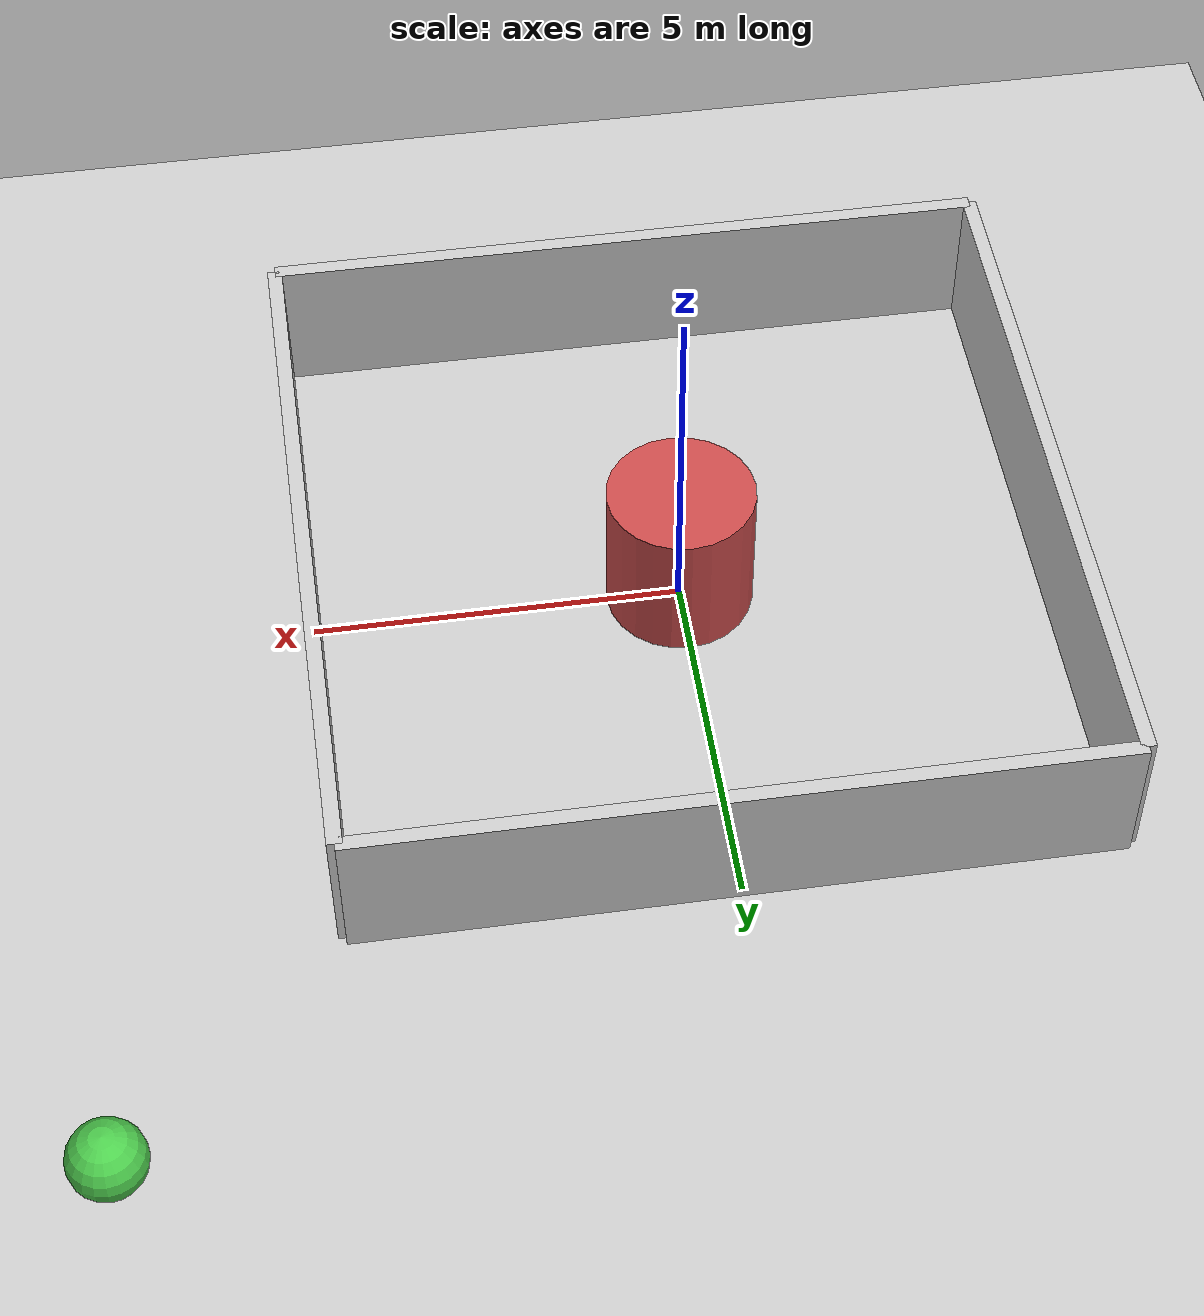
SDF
<?xml version="1.0" ?>
<sdf version="1.6">
  <world name="swarm_world">
    <!-- A global light source -->
    <include>
      <uri>model://sun</uri>
    </include>

    <!-- A ground plane -->
    <include>
      <uri>model://ground_plane</uri>
    </include>

    <!-- Environment with obstacles -->
    <!-- Obstacle 1: Wall -->
    <model name="wall1">
      <static>true</static>
      <link name="link">
        <collision name="collision">
          <geometry>
            <box>
              <size>10.0 0.2 2.0</size>
            </box>
          </geometry>
        </collision>
        <visual name="visual">
          <geometry>
            <box>
              <size>10.0 0.2 2.0</size>
            </box>
          </geometry>
          <material>
            <ambient>0.8 0.8 0.8 1</ambient>
            <diffuse>0.8 0.8 0.8 1</diffuse>
          </material>
        </visual>
      </link>
      <pose>0 5 1 0 0 0</pose>
    </model>

    <!-- Obstacle 2: Wall -->
    <model name="wall2">
      <static>true</static>
      <link name="link">
        <collision name="collision">
          <geometry>
            <box>
              <size>10.0 0.2 2.0</size>
            </box>
          </geometry>
        </collision>
        <visual name="visual">
          <geometry>
            <box>
              <size>10.0 0.2 2.0</size>
            </box>
          </geometry>
          <material>
            <ambient>0.8 0.8 0.8 1</ambient>
            <diffuse>0.8 0.8 0.8 1</diffuse>
          </material>
        </visual>
      </link>
      <pose>0 -5 1 0 0 0</pose>
    </model>

    <!-- Obstacle 3: Wall -->
    <model name="wall3">
      <static>true</static>
      <link name="link">
        <collision name="collision">
          <geometry>
            <box>
              <size>0.2 10.0 2.0</size>
            </box>
          </geometry>
        </collision>
        <visual name="visual">
          <geometry>
            <box>
              <size>0.2 10.0 2.0</size>
            </box>
          </geometry>
          <material>
            <ambient>0.8 0.8 0.8 1</ambient>
            <diffuse>0.8 0.8 0.8 1</diffuse>
          </material>
        </visual>
      </link>
      <pose>5 0 1 0 0 0</pose>
    </model>

    <!-- Obstacle 4: Wall -->
    <model name="wall4">
      <static>true</static>
      <link name="link">
        <collision name="collision">
          <geometry>
            <box>
              <size>0.2 10.0 2.0</size>
            </box>
          </geometry>
        </collision>
        <visual name="visual">
          <geometry>
            <box>
              <size>0.2 10.0 2.0</size>
            </box>
          </geometry>
          <material>
            <ambient>0.8 0.8 0.8 1</ambient>
            <diffuse>0.8 0.8 0.8 1</diffuse>
          </material>
        </visual>
      </link>
      <pose>-5 0 1 0 0 0</pose>
    </model>

    <!-- Central obstacle -->
    <model name="obstacle1">
      <static>true</static>
      <link name="link">
        <collision name="collision">
          <geometry>
            <cylinder>
              <radius>1.0</radius>
              <length>2.0</length>
            </cylinder>
          </geometry>
        </collision>
        <visual name="visual">
          <geometry>
            <cylinder>
              <radius>1.0</radius>
              <length>2.0</length>
            </cylinder>
          </geometry>
          <material>
            <ambient>0.8 0.3 0.3 1</ambient>
            <diffuse>0.8 0.3 0.3 1</diffuse>
          </material>
        </visual>
      </link>
      <pose>0 0 1 0 0 0</pose>
    </model>

    <!-- Target/goal marker -->
    <model name="goal">
      <static>true</static>
      <link name="link">
        <collision name="collision">
          <geometry>
            <sphere>
              <radius>0.5</radius>
            </sphere>
          </geometry>
        </collision>
        <visual name="visual">
          <geometry>
            <sphere>
              <radius>0.5</radius>
            </sphere>
          </geometry>
          <material>
            <ambient>0.3 0.8 0.3 1</ambient>
            <diffuse>0.3 0.8 0.3 1</diffuse>
            <emissive>0 0.5 0 1</emissive>
          </material>
        </visual>
      </link>
      <pose>8 8 0.5 0 0 0</pose>
    </model>

    <physics type="ode">
      <real_time_update_rate>1000.0</real_time_update_rate>
      <max_step_size>0.001</max_step_size>
      <real_time_factor>1</real_time_factor>
      <ode>
        <solver>
          <type>quick</type>
          <iters>150</iters>
          <precon_iters>0</precon_iters>
          <sor>1.400000</sor>
          <use_dynamic_moi_rescaling>1</use_dynamic_moi_rescaling>
        </solver>
        <constraints>
          <cfm>0.00001</cfm>
          <erp>0.2</erp>
          <contact_max_correcting_vel>2000.000000</contact_max_correcting_vel>
          <contact_surface_layer>0.01000</contact_surface_layer>
        </constraints>
      </ode>
    </physics>
  </world>
</sdf>
